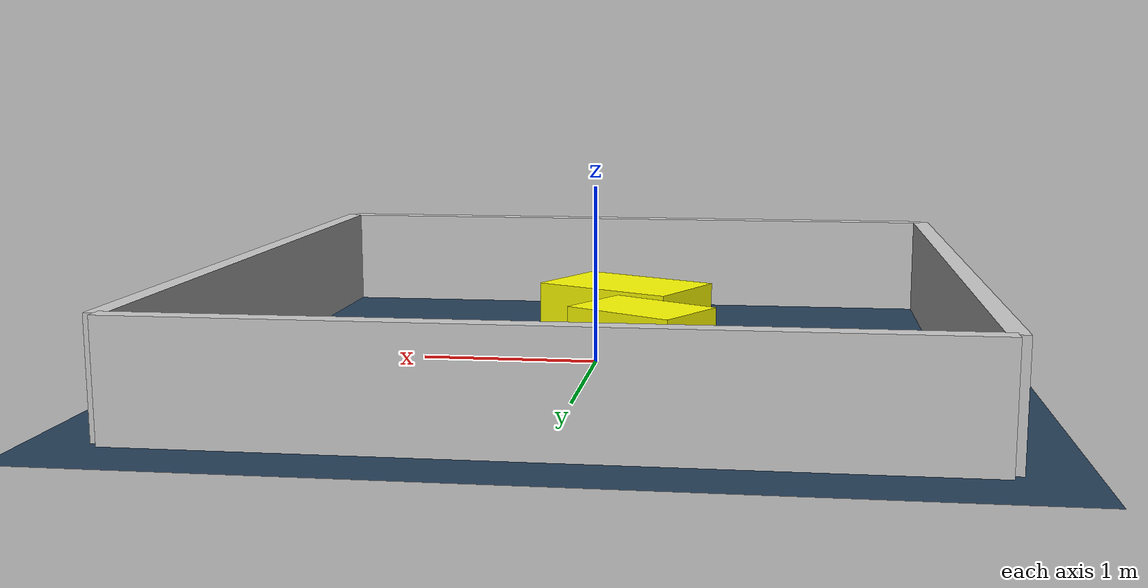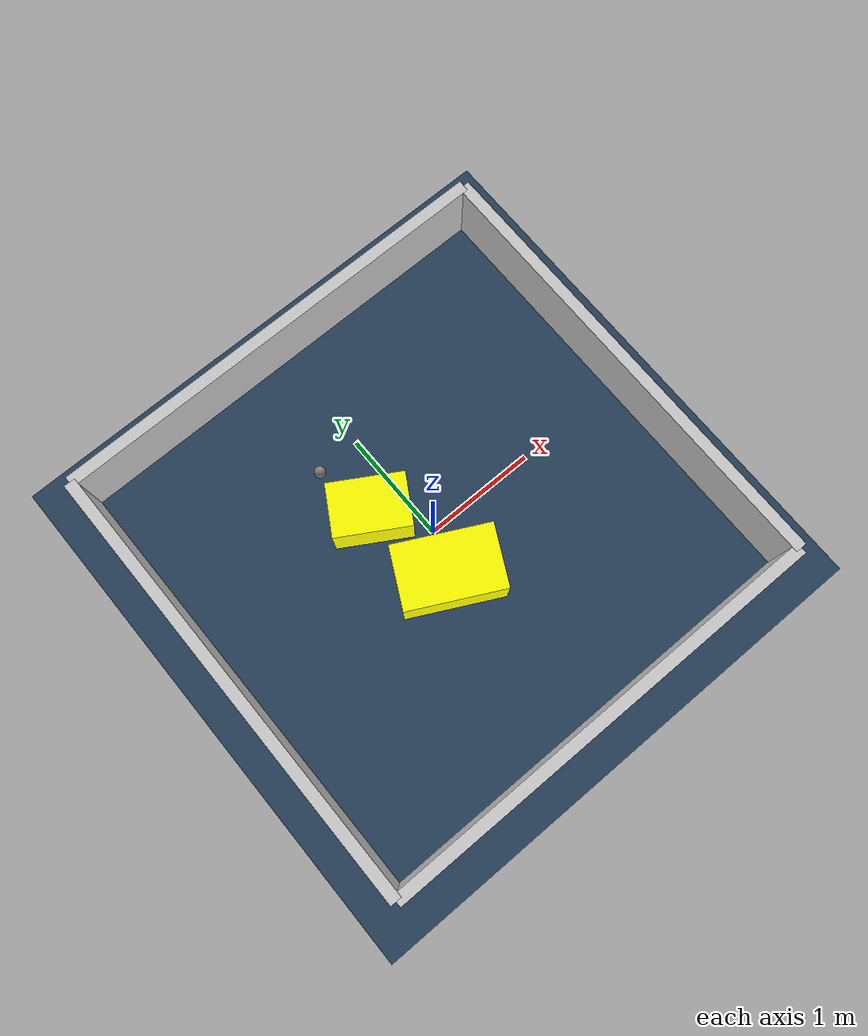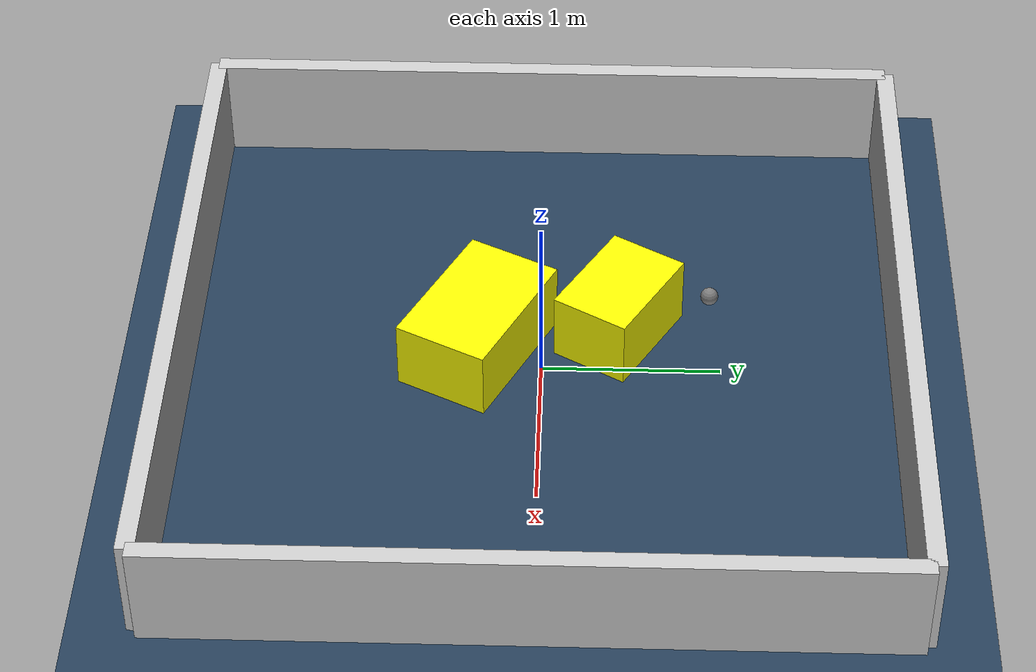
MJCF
<?xml version="1.0" ?>
<mujoco model="generated_environment">
  <option timestep="0.01" integrator="RK4" cone="elliptic"/>
  <default>
    <geom density="1"/>
  </default>
  <asset>
    <texture builtin="gradient" height="3072" rgb1="0.3 0.5 0.7" rgb2="0 0 0" type="skybox" width="512"/>
    <texture builtin="checker" height="300" mark="edge" markrgb="0.8 0.8 0.8" name="groundplane" rgb1="0.2 0.3 0.4" rgb2="0.1 0.2 0.3" type="2d" width="300"/>
    <material name="groundplane" reflectance="0.2" texrepeat="5 5" texture="groundplane" texuniform="true"/>
    <material name="robot" rgba="0.0 1.0 0.0 1"/>
  </asset>
  <worldbody>
    <light dir="0 0 -1" directional="true" pos="0 0 1.5"/>
    <geom condim="4" friction="1.0 0.005 0.001" material="groundplane" name="floor" size="0 0 0.05" type="plane"/>
    <body name="walls">
      <geom name="wall_1" condim="4" pos="-2.0 0.0 0.3" rgba="0.800000011920929 0.800000011920929 0.800000011920929 1.0" size="0.05 2.0 0.3" type="box"/>
      <geom name="wall_2" condim="4" pos="2.0 0.0 0.3" rgba="0.800000011920929 0.800000011920929 0.800000011920929 1.0" size="0.05 2.0 0.3" type="box"/>
      <geom name="wall_3" condim="4" pos="0.0 -2.0 0.3" rgba="0.800000011920929 0.800000011920929 0.800000011920929 1.0" size="2.0 0.05 0.3" type="box"/>
      <geom name="wall_4" condim="4" pos="0.0 2.0 0.3" rgba="0.800000011920929 0.800000011920929 0.800000011920929 1.0" size="2.0 0.05 0.3" type="box"/>
    </body>
    <body name="robot">
      <joint name="joint_x" type="slide" pos="0 0 0" axis="1 0 0"/>
      <joint name="joint_y" type="slide" pos="0 0 0" axis="0 1 0"/>
      <geom name="robot" type="sphere" pos="-0.4144205175825513 0.939120303197372 0.2" size="0.05" mass="5." friction="1.0 0.005 0.0001" condim="4"/>
      <site name="sensor_ball"/>
    </body>
    <body name="obstacle_1_movable">
      <geom name="obstacle_1_movable" condim="4" pos="-0.13494855192698996 -0.35958924579537865 0.2" euler="0 0 333.10349486087114" friction="1.0 0.005 0.001" rgba="1 1 0 1" size="0.4266854539173026 0.2732470885967575 0.2" type="box" mass="0.1"/>
      <joint type="free"/>
    </body>
    <body name="obstacle_2_movable">
      <geom name="obstacle_2_movable" condim="4" pos="-0.3003297173332875 0.42800994837056283 0.2" euler="0 0 329.4136658198702" friction="1.0 0.005 0.001" rgba="1 1 0 1" size="0.3269417704567585 0.22776572284436059 0.2" type="box" mass="0.1"/>
      <joint type="free"/>
    </body>
  </worldbody>
  <actuator>
    <motor name="actuator_x" joint="joint_x" gear="1" ctrlrange="-1 1"/>
    <motor name="actuator_y" joint="joint_y" gear="1" ctrlrange="-1 1"/>
  </actuator>
</mujoco>
